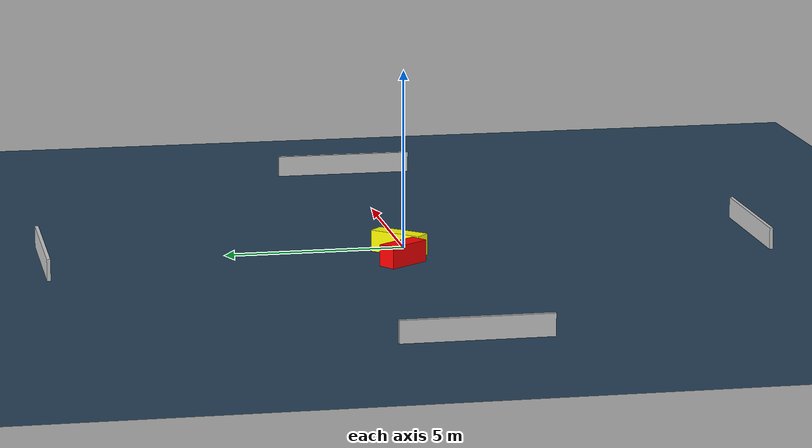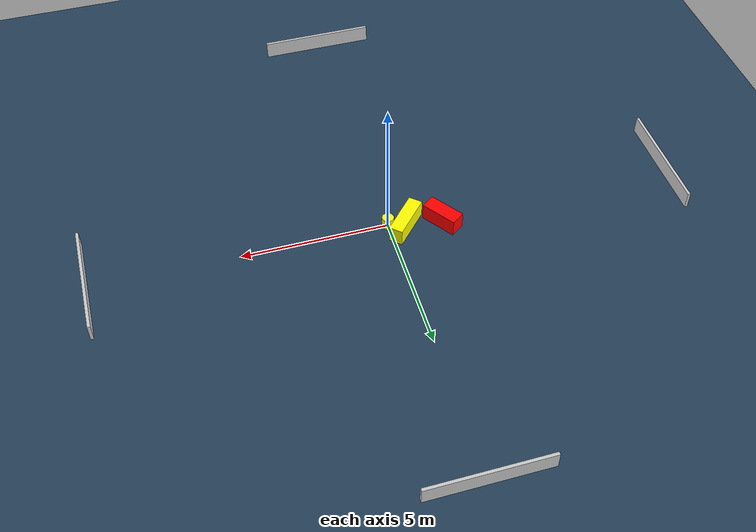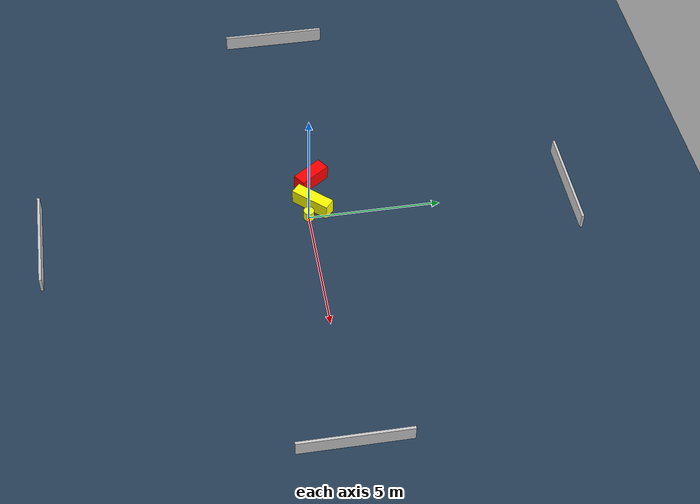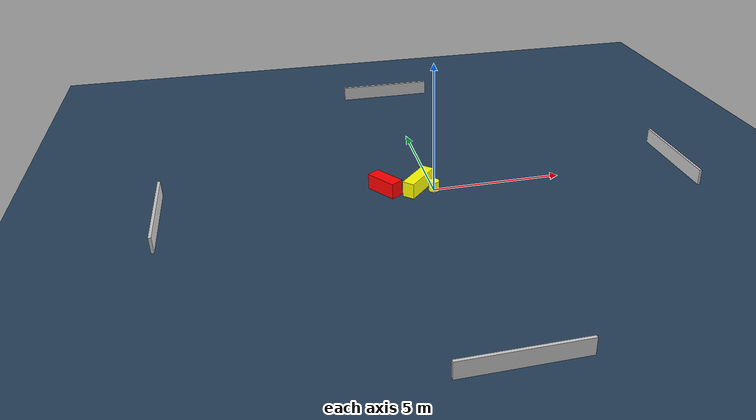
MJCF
<?xml version="1.0" ?>
<mujoco model="generated_environment">
  <option timestep="0.01" integrator="RK4" cone="elliptic"/>
  <default>
    <geom density="1"/>
  </default>
  <asset>
    <texture builtin="gradient" height="3072" name="skybox" rgb1="0.3 0.5 0.7" rgb2="0 0 0" type="skybox" width="512"/>
    <texture builtin="checker" height="300" name="groundplane" rgb1="0.2 0.3 0.4" rgb2="0.1 0.2 0.3" type="2d" width="300"/>
    <material name="groundplane" reflectance="0.2" texrepeat="5 5" texture="groundplane"/>
  </asset>
  <worldbody>
    <light dir="0 0 -1" directional="true" pos="0 0 1.5"/>
    <geom condim="3" friction="0.5 0.005 0.001" material="groundplane" name="floor" pos="0 0 0" size="0 0 0.05" type="plane"/>
    <body name="walls">
      <geom name="wall_1" condim="4" pos="-10.0 0.0 0.3" rgba="0.800000011920929 0.800000011920929 0.800000011920929 1.0" size="0.05 2.0 0.3" type="box"/>
      <geom name="wall_2" condim="4" pos="10.0 0.0 0.3" rgba="0.800000011920929 0.800000011920929 0.800000011920929 1.0" size="0.05 2.0 0.3" type="box"/>
      <geom name="wall_3" condim="4" pos="0.0 -10.0 0.3" rgba="0.800000011920929 0.800000011920929 0.800000011920929 1.0" size="2.0 0.05 0.3" type="box"/>
      <geom name="wall_4" condim="4" pos="0.0 10.0 0.3" rgba="0.800000011920929 0.800000011920929 0.800000011920929 1.0" size="2.0 0.05 0.3" type="box"/>
    </body>
    <body name="robot">
      <joint name="joint_x" type="slide" pos="0 0 0" axis="1 0 0"/>
      <joint name="joint_y" type="slide" pos="0 0 0" axis="0 1 0"/>
      <geom name="robot" type="cylinder" pos="0.0 0.0 0.2" size="0.2 0.2 0.0" mass="5.0" friction="1.0 0.005 0.0001" condim="4" rgba="1.0 1.0 0.0 1.0"/>
    </body>
    <body name="obstacle_1_movable">
      <geom name="obstacle_1_movable" condim="4" pos="-0.5481347551321916 0.22442993371117337 0.3" euler="0 0 137.73370128035586" friction="0.0 0.005 0.001" rgba="1.0 1.0 0.0 1.0" size="0.23513470110150855 0.7698101672580271 0.3" type="box" mass="0.1"/>
      <joint type="free"/>
    </body>
    <body name="obstacle_2_static">
      <geom name="obstacle_2_static" condim="4" pos="-1.7994720499672467 0.34843563004137607 0.3" euler="0 0 214.95932509114058" friction="0.0 0.005 0.001" rgba="1.0 0.0 0.0 1.0" size="0.2589868412167883 0.6354808588569101 0.3" type="box"/>
    </body>
  </worldbody>
  <actuator>
    <motor name="actuator_x" joint="joint_x" gear="1" ctrlrange="-1 1"/>
    <motor name="actuator_y" joint="joint_y" gear="1" ctrlrange="-1 1"/>
  </actuator>
</mujoco>
